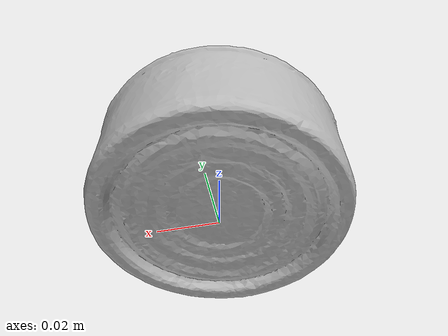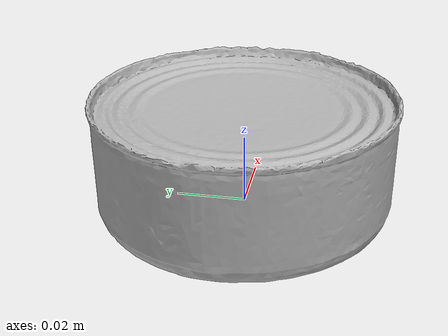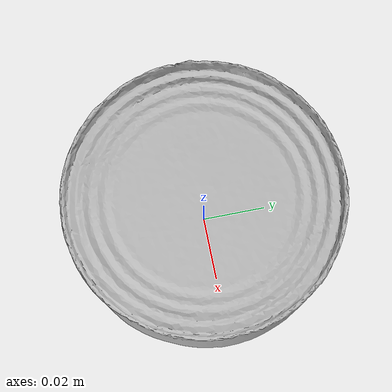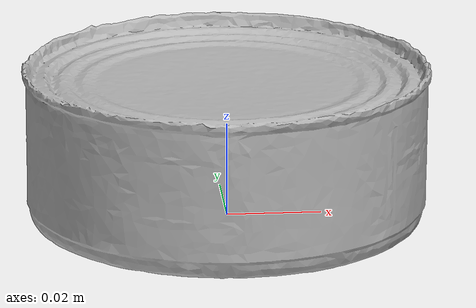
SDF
<?xml version="1.0"?>
<sdf version="1.6">
  <model name="tuna_fish_can">
    <link name="link">
      <inertial>
        <mass>0.171</mass>
        <inertia>
          <ixx>0.000092735</ixx>
          <ixy>0.0</ixy>
          <ixz>0.0</ixz>
          <iyy>0.000092735</iyy> <!-- same as ixx -->
          <iyz>0.0</iyz>
          <izz>0.000154434</izz>
        </inertia>
        <pose>0 0 0.0165 0 0 0</pose>
      </inertial>
      <collision name="collision">
        <pose>0 0 0.0165 0 0 0</pose>
        <geometry>
          <cylinder>
            <radius>0.0425</radius>
            <length>0.033</length>
          </cylinder>
        </geometry>
      </collision>
      <visual name="visual">
        <!-- 用网格包围盒中心对齐简化圆柱 collision 中心。 -->
        <pose>-0.000415240 0.000041785 -0.000366933 0 0 0</pose>
        <geometry>
          <mesh>
            <uri>model://tuna_fish_can/meshes/textured.dae</uri>
          </mesh>
        </geometry>
      </visual>
    </link>
  </model>
</sdf>
